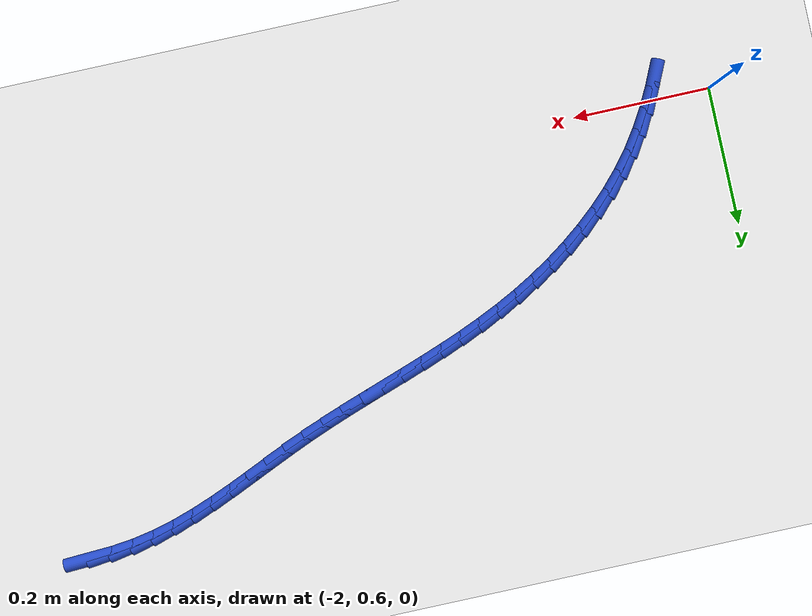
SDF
<sdf version="1.6">
 <world name="default">
  <model name="ground_plane">
   <static>1</static>
   <link name="link">
    <collision name="collision">
     <geometry><plane><normal>0 0 1</normal><size>100 100</size></plane></geometry>
     <surface><friction><ode><mu>100</mu><mu2>50</mu2></ode></friction></surface>
    </collision>
    <visual name="visual">
     <cast_shadows>0</cast_shadows>
     <geometry><plane><normal>0 0 1</normal><size>100 100</size></plane></geometry>
     <material>
      <script><uri>file://media/materials/scripts/gazebo.material</uri><name>Gazebo/WhiteGlow</name></script>
     </material>
    </visual>
   </link>
  </model>
  <model name="line">
   <link name="link_48">
    <pose>-0.9878471214355489 1.0708336929309232 0.01 0 1.57 0.05122341733824503</pose>
    <collision name="collision">
     <geometry><cylinder><radius>0.01</radius><length>0.08</length></cylinder></geometry>
    </collision>
    <visual name="visual">
     <material>
      <script><name>Gazebo/Blue</name><uri>file://media/materials/scripts/gazebo.material</uri></script>
     </material>
     <geometry><cylinder><radius>0.01</radius><length>0.08</length></cylinder></geometry>
    </visual>
   </link>
   <link name="link_49">
    <pose>-1.0204709830233634 1.0691611241475625 0.01 0 1.57 0.11779036829307583</pose>
    <collision name="collision">
     <geometry><cylinder><radius>0.01</radius><length>0.08</length></cylinder></geometry>
    </collision>
    <visual name="visual">
     <material>
      <script><name>Gazebo/Blue</name><uri>file://media/materials/scripts/gazebo.material</uri></script>
     </material>
     <geometry><cylinder><radius>0.01</radius><length>0.08</length></cylinder></geometry>
    </visual>
   </link>
   <link name="link_50">
    <pose>-1.0527485461936725 1.0653414563151642 0.01 0 1.57 0.18861127148207724</pose>
    <collision name="collision">
     <geometry><cylinder><radius>0.01</radius><length>0.08</length></cylinder></geometry>
    </collision>
    <visual name="visual">
     <material>
      <script><name>Gazebo/Blue</name><uri>file://media/materials/scripts/gazebo.material</uri></script>
     </material>
     <geometry><cylinder><radius>0.01</radius><length>0.08</length></cylinder></geometry>
    </visual>
   </link>
   <link name="link_51">
    <pose>-1.0845821027197131 1.059265062975896 0.01 0 1.57 0.25732935869336016</pose>
    <collision name="collision">
     <geometry><cylinder><radius>0.01</radius><length>0.08</length></cylinder></geometry>
    </collision>
    <visual name="visual">
     <material>
      <script><name>Gazebo/Blue</name><uri>file://media/materials/scripts/gazebo.material</uri></script>
     </material>
     <geometry><cylinder><radius>0.01</radius><length>0.08</length></cylinder></geometry>
    </visual>
   </link>
   <link name="link_52">
    <pose>-1.115945244497374 1.0510114153502563 0.01 0 1.57 0.314274118821379</pose>
    <collision name="collision">
     <geometry><cylinder><radius>0.01</radius><length>0.08</length></cylinder></geometry>
    </collision>
    <visual name="visual">
     <material>
      <script><name>Gazebo/Blue</name><uri>file://media/materials/scripts/gazebo.material</uri></script>
     </material>
     <geometry><cylinder><radius>0.01</radius><length>0.08</length></cylinder></geometry>
    </visual>
   </link>
   <link name="link_53">
    <pose>-1.1469185223014469 1.040943654236364 0.01 0 1.57 0.3585739039393243</pose>
    <collision name="collision">
     <geometry><cylinder><radius>0.01</radius><length>0.08</length></cylinder></geometry>
    </collision>
    <visual name="visual">
     <material>
      <script><name>Gazebo/Blue</name><uri>file://media/materials/scripts/gazebo.material</uri></script>
     </material>
     <geometry><cylinder><radius>0.01</radius><length>0.08</length></cylinder></geometry>
    </visual>
   </link>
   <link name="link_54">
    <pose>-1.1775912842163134 1.0294482521007482 0.01 0 1.57 0.390426303165997</pose>
    <collision name="collision">
     <geometry><cylinder><radius>0.01</radius><length>0.08</length></cylinder></geometry>
    </collision>
    <visual name="visual">
     <material>
      <script><name>Gazebo/Blue</name><uri>file://media/materials/scripts/gazebo.material</uri></script>
     </material>
     <geometry><cylinder><radius>0.01</radius><length>0.08</length></cylinder></geometry>
    </visual>
   </link>
   <link name="link_55">
    <pose>-1.2080528783263569 1.0169116814099375 0.01 0 1.57 0.4101290182392701</pose>
    <collision name="collision">
     <geometry><cylinder><radius>0.01</radius><length>0.08</length></cylinder></geometry>
    </collision>
    <visual name="visual">
     <material>
      <script><name>Gazebo/Blue</name><uri>file://media/materials/scripts/gazebo.material</uri></script>
     </material>
     <geometry><cylinder><radius>0.01</radius><length>0.08</length></cylinder></geometry>
    </visual>
   </link>
   <link name="link_56">
    <pose>-1.2383926527159594 1.0037204146304604 0.01 0 1.57 0.41793713932090404</pose>
    <collision name="collision">
     <geometry><cylinder><radius>0.01</radius><length>0.08</length></cylinder></geometry>
    </collision>
    <visual name="visual">
     <material>
      <script><name>Gazebo/Blue</name><uri>file://media/materials/scripts/gazebo.material</uri></script>
     </material>
     <geometry><cylinder><radius>0.01</radius><length>0.08</length></cylinder></geometry>
    </visual>
   </link>
   <link name="link_57">
    <pose>-1.2686999554695035 0.9902609242288455 0.01 0 1.57 0.413982584713164</pose>
    <collision name="collision">
     <geometry><cylinder><radius>0.01</radius><length>0.08</length></cylinder></geometry>
    </collision>
    <visual name="visual">
     <material>
      <script><name>Gazebo/Blue</name><uri>file://media/materials/scripts/gazebo.material</uri></script>
     </material>
     <geometry><cylinder><radius>0.01</radius><length>0.08</length></cylinder></geometry>
    </visual>
   </link>
   <link name="link_58">
    <pose>-1.2990641346713716 0.9769196826716221 0.01 0 1.57 0.39824617889586683</pose>
    <collision name="collision">
     <geometry><cylinder><radius>0.01</radius><length>0.08</length></cylinder></geometry>
    </collision>
    <visual name="visual">
     <material>
      <script><name>Gazebo/Blue</name><uri>file://media/materials/scripts/gazebo.material</uri></script>
     </material>
     <geometry><cylinder><radius>0.01</radius><length>0.08</length></cylinder></geometry>
    </visual>
   </link>
   <link name="link_59">
    <pose>-1.3295745283183291 0.9640831233294113 0.01 0 1.57 0.3743574588811485</pose>
    <collision name="collision">
     <geometry><cylinder><radius>0.01</radius><length>0.08</length></cylinder></geometry>
    </collision>
    <visual name="visual">
     <material>
      <script><name>Gazebo/Blue</name><uri>file://media/materials/scripts/gazebo.material</uri></script>
     </material>
     <geometry><cylinder><radius>0.01</radius><length>0.08</length></cylinder></geometry>
    </visual>
   </link>
   <link name="link_60">
    <pose>-1.3602890426563043 0.9520158616279194 0.01 0 1.57 0.3544010125411604</pose>
    <collision name="collision">
     <geometry><cylinder><radius>0.01</radius><length>0.08</length></cylinder></geometry>
    </collision>
    <visual name="visual">
     <material>
      <script><name>Gazebo/Blue</name><uri>file://media/materials/scripts/gazebo.material</uri></script>
     </material>
     <geometry><cylinder><radius>0.01</radius><length>0.08</length></cylinder></geometry>
    </visual>
   </link>
   <link name="link_61">
    <pose>-1.3911646067560295 0.9405911624750479 0.01 0 1.57 0.34088649336153737</pose>
    <collision name="collision">
     <geometry><cylinder><radius>0.01</radius><length>0.08</length></cylinder></geometry>
    </collision>
    <visual name="visual">
     <material>
      <script><name>Gazebo/Blue</name><uri>file://media/materials/scripts/gazebo.material</uri></script>
     </material>
     <geometry><cylinder><radius>0.01</radius><length>0.08</length></cylinder></geometry>
    </visual>
   </link>
   <link name="link_62">
    <pose>-1.4221379125112612 0.9296038588986867 0.01 0 1.57 0.33386700032577304</pose>
    <collision name="collision">
     <geometry><cylinder><radius>0.01</radius><length>0.08</length></cylinder></geometry>
    </collision>
    <visual name="visual">
     <material>
      <script><name>Gazebo/Blue</name><uri>file://media/materials/scripts/gazebo.material</uri></script>
     </material>
     <geometry><cylinder><radius>0.01</radius><length>0.08</length></cylinder></geometry>
    </visual>
   </link>
   <link name="link_63">
    <pose>-1.453145651815755 0.9188487839267248 0.01 0 1.57 0.33337574652297514</pose>
    <collision name="collision">
     <geometry><cylinder><radius>0.01</radius><length>0.08</length></cylinder></geometry>
    </collision>
    <visual name="visual">
     <material>
      <script><name>Gazebo/Blue</name><uri>file://media/materials/scripts/gazebo.material</uri></script>
     </material>
     <geometry><cylinder><radius>0.01</radius><length>0.08</length></cylinder></geometry>
    </visual>
   </link>
   <link name="link_64">
    <pose>-1.4841245165632668 0.9081207705870517 0.01 0 1.57 0.33943473736715</pose>
    <collision name="collision">
     <geometry><cylinder><radius>0.01</radius><length>0.08</length></cylinder></geometry>
    </collision>
    <visual name="visual">
     <material>
      <script><name>Gazebo/Blue</name><uri>file://media/materials/scripts/gazebo.material</uri></script>
     </material>
     <geometry><cylinder><radius>0.01</radius><length>0.08</length></cylinder></geometry>
    </visual>
   </link>
   <link name="link_65">
    <pose>-1.5150111986475532 0.8972146519075572 0.01 0 1.57 0.35205526487337735</pose>
    <collision name="collision">
     <geometry><cylinder><radius>0.01</radius><length>0.08</length></cylinder></geometry>
    </collision>
    <visual name="visual">
     <material>
      <script><name>Gazebo/Blue</name><uri>file://media/materials/scripts/gazebo.material</uri></script>
     </material>
     <geometry><cylinder><radius>0.01</radius><length>0.08</length></cylinder></geometry>
    </visual>
   </link>
   <link name="link_66">
    <pose>-1.5457423899623692 0.8859252609161301 0.01 0 1.57 0.37123001233853986</pose>
    <collision name="collision">
     <geometry><cylinder><radius>0.01</radius><length>0.08</length></cylinder></geometry>
    </collision>
    <visual name="visual">
     <material>
      <script><name>Gazebo/Blue</name><uri>file://media/materials/scripts/gazebo.material</uri></script>
     </material>
     <geometry><cylinder><radius>0.01</radius><length>0.08</length></cylinder></geometry>
    </visual>
   </link>
   <link name="link_67">
    <pose>-1.5762547824014712 0.8740474306406602 0.01 0 1.57 0.3969168317918247</pose>
    <collision name="collision">
     <geometry><cylinder><radius>0.01</radius><length>0.08</length></cylinder></geometry>
    </collision>
    <visual name="visual">
     <material>
      <script><name>Gazebo/Blue</name><uri>file://media/materials/scripts/gazebo.material</uri></script>
     </material>
     <geometry><cylinder><radius>0.01</radius><length>0.08</length></cylinder></geometry>
    </visual>
   </link>
   <link name="link_68">
    <pose>-1.6064850678586153 0.861375994109037 0.01 0 1.57 0.42901477699194496</pose>
    <collision name="collision">
     <geometry><cylinder><radius>0.01</radius><length>0.08</length></cylinder></geometry>
    </collision>
    <visual name="visual">
     <material>
      <script><name>Gazebo/Blue</name><uri>file://media/materials/scripts/gazebo.material</uri></script>
     </material>
     <geometry><cylinder><radius>0.01</radius><length>0.08</length></cylinder></geometry>
    </visual>
   </link>
   <link name="link_69">
    <pose>-1.636369938227557 0.8477057843491494 0.01 0 1.57 0.46733356953777033</pose>
    <collision name="collision">
     <geometry><cylinder><radius>0.01</radius><length>0.08</length></cylinder></geometry>
    </collision>
    <visual name="visual">
     <material>
      <script><name>Gazebo/Blue</name><uri>file://media/materials/scripts/gazebo.material</uri></script>
     </material>
     <geometry><cylinder><radius>0.01</radius><length>0.08</length></cylinder></geometry>
    </visual>
   </link>
   <link name="link_70">
    <pose>-1.665846073357384 0.8328316555713264 0.01 0 1.57 0.5107242451037391</pose>
    <collision name="collision">
     <geometry><cylinder><radius>0.01</radius><length>0.08</length></cylinder></geometry>
    </collision>
    <visual name="visual">
     <material>
      <script><name>Gazebo/Blue</name><uri>file://media/materials/scripts/gazebo.material</uri></script>
     </material>
     <geometry><cylinder><radius>0.01</radius><length>0.08</length></cylinder></geometry>
    </visual>
   </link>
   <link name="link_71">
    <pose>-1.69482351713369 0.8165953055079298 0.01 0 1.57 0.5565537216022474</pose>
    <collision name="collision">
     <geometry><cylinder><radius>0.01</radius><length>0.08</length></cylinder></geometry>
    </collision>
    <visual name="visual">
     <material>
      <script><name>Gazebo/Blue</name><uri>file://media/materials/scripts/gazebo.material</uri></script>
     </material>
     <geometry><cylinder><radius>0.01</radius><length>0.08</length></cylinder></geometry>
    </visual>
   </link>
   <link name="link_72">
    <pose>-1.7231291375618014 0.7989847097303338 0.01 0 1.57 0.6047651851623198</pose>
    <collision name="collision">
     <geometry><cylinder><radius>0.01</radius><length>0.08</length></cylinder></geometry>
    </collision>
    <visual name="visual">
     <material>
      <script><name>Gazebo/Blue</name><uri>file://media/materials/scripts/gazebo.material</uri></script>
     </material>
     <geometry><cylinder><radius>0.01</radius><length>0.08</length></cylinder></geometry>
    </visual>
   </link>
   <link name="link_73">
    <pose>-1.7505736121619584 0.7800163173188582 0.01 0 1.57 0.6558540911503283</pose>
    <collision name="collision">
     <geometry><cylinder><radius>0.01</radius><length>0.08</length></cylinder></geometry>
    </collision>
    <visual name="visual">
     <material>
      <script><name>Gazebo/Blue</name><uri>file://media/materials/scripts/gazebo.material</uri></script>
     </material>
     <geometry><cylinder><radius>0.01</radius><length>0.08</length></cylinder></geometry>
    </visual>
   </link>
   <link name="link_74">
    <pose>-1.7769676184544008 0.7597065773538231 0.01 0 1.57 0.7103170107725821</pose>
    <collision name="collision">
     <geometry><cylinder><radius>0.01</radius><length>0.08</length></cylinder></geometry>
    </collision>
    <visual name="visual">
     <material>
      <script><name>Gazebo/Blue</name><uri>file://media/materials/scripts/gazebo.material</uri></script>
     </material>
     <geometry><cylinder><radius>0.01</radius><length>0.08</length></cylinder></geometry>
    </visual>
   </link>
   <link name="link_75">
    <pose>-1.8021218339593683 0.7380719389155489 0.01 0 1.57 0.7686428269944386</pose>
    <collision name="collision">
     <geometry><cylinder><radius>0.01</radius><length>0.08</length></cylinder></geometry>
    </collision>
    <visual name="visual">
     <material>
      <script><name>Gazebo/Blue</name><uri>file://media/materials/scripts/gazebo.material</uri></script>
     </material>
     <geometry><cylinder><radius>0.01</radius><length>0.08</length></cylinder></geometry>
    </visual>
   </link>
   <link name="link_76">
    <pose>-1.8258469361971024 0.7151288510843555 0.01 0 1.57 0.8312947194843935</pose>
    <collision name="collision">
     <geometry><cylinder><radius>0.01</radius><length>0.08</length></cylinder></geometry>
    </collision>
    <visual name="visual">
     <material>
      <script><name>Gazebo/Blue</name><uri>file://media/materials/scripts/gazebo.material</uri></script>
     </material>
     <geometry><cylinder><radius>0.01</radius><length>0.08</length></cylinder></geometry>
    </visual>
   </link>
   <link name="link_77">
    <pose>-1.8479536026878423 0.6908937629405633 0.01 0 1.57 0.8986806204855754</pose>
    <collision name="collision">
     <geometry><cylinder><radius>0.01</radius><length>0.08</length></cylinder></geometry>
    </collision>
    <visual name="visual">
     <material>
      <script><name>Gazebo/Blue</name><uri>file://media/materials/scripts/gazebo.material</uri></script>
     </material>
     <geometry><cylinder><radius>0.01</radius><length>0.08</length></cylinder></geometry>
    </visual>
   </link>
   <link name="link_78">
    <pose>-1.8682525109518284 0.665383123564492 0.01 0 1.57 0.9695563966280117</pose>
    <collision name="collision">
     <geometry><cylinder><radius>0.01</radius><length>0.08</length></cylinder></geometry>
    </collision>
    <visual name="visual">
     <material>
      <script><name>Gazebo/Blue</name><uri>file://media/materials/scripts/gazebo.material</uri></script>
     </material>
     <geometry><cylinder><radius>0.01</radius><length>0.08</length></cylinder></geometry>
    </visual>
   </link>
   <link name="link_79">
    <pose>-1.8866051243379678 0.638628429187329 0.01 0 1.57 1.035513795273759</pose>
    <collision name="collision">
     <geometry><cylinder><radius>0.01</radius><length>0.08</length></cylinder></geometry>
    </collision>
    <visual name="visual">
     <material>
      <script><name>Gazebo/Blue</name><uri>file://media/materials/scripts/gazebo.material</uri></script>
     </material>
     <geometry><cylinder><radius>0.01</radius><length>0.08</length></cylinder></geometry>
    </visual>
   </link>
   <link name="link_80">
    <pose>-1.9031431957839389 0.6107412591722464 0.01 0 1.57 1.0932836550782932</pose>
    <collision name="collision">
     <geometry><cylinder><radius>0.01</radius><length>0.08</length></cylinder></geometry>
    </collision>
    <visual name="visual">
     <material>
      <script><name>Gazebo/Blue</name><uri>file://media/materials/scripts/gazebo.material</uri></script>
     </material>
     <geometry><cylinder><radius>0.01</radius><length>0.08</length></cylinder></geometry>
    </visual>
   </link>
   <link name="link_81">
    <pose>-1.9180880427011247 0.5818597296188156 0.01 0 1.57 1.1426138244196906</pose>
    <collision name="collision">
     <geometry><cylinder><radius>0.01</radius><length>0.08</length></cylinder></geometry>
    </collision>
    <visual name="visual">
     <material>
      <script><name>Gazebo/Blue</name><uri>file://media/materials/scripts/gazebo.material</uri></script>
     </material>
     <geometry><cylinder><radius>0.01</radius><length>0.08</length></cylinder></geometry>
    </visual>
   </link>
  </model>
 </world>
</sdf>
